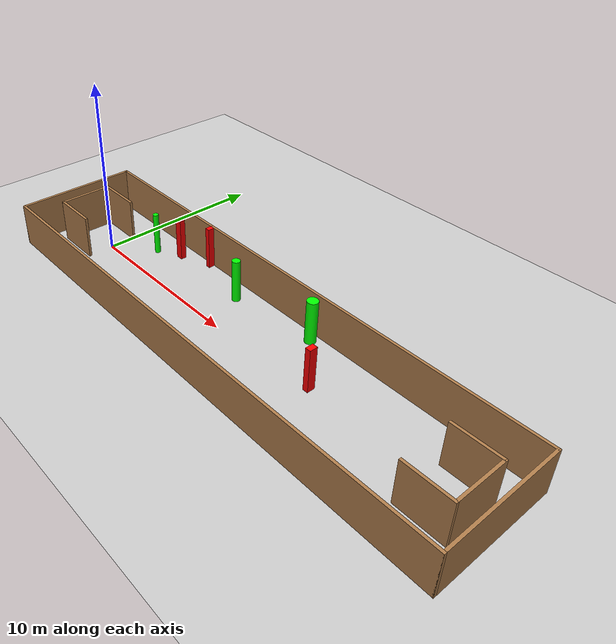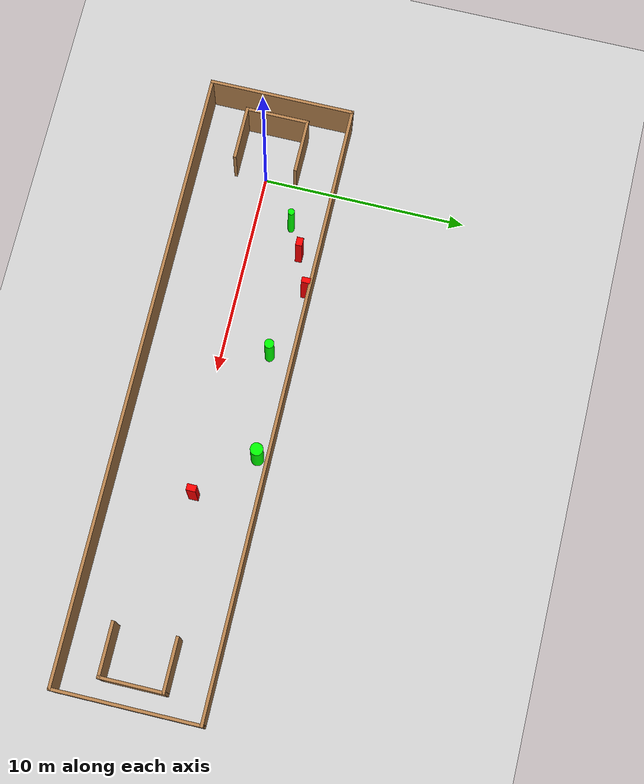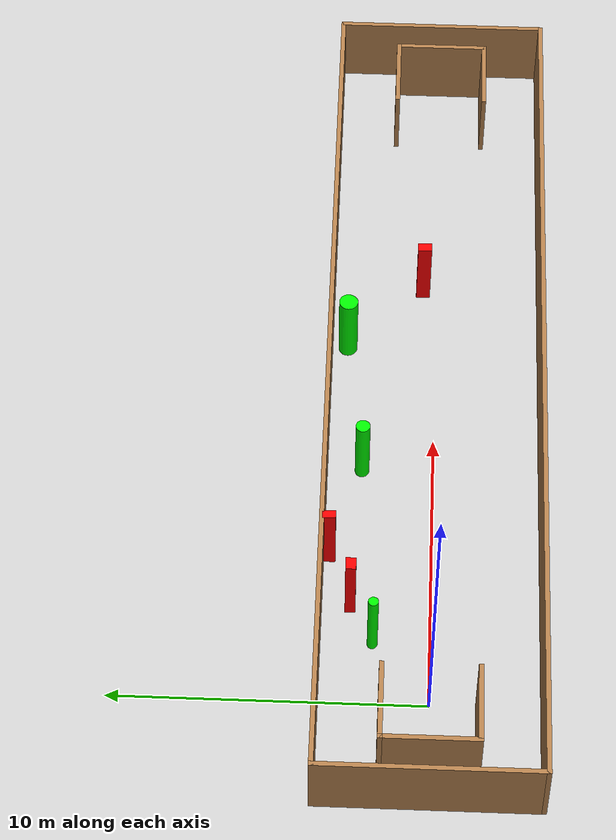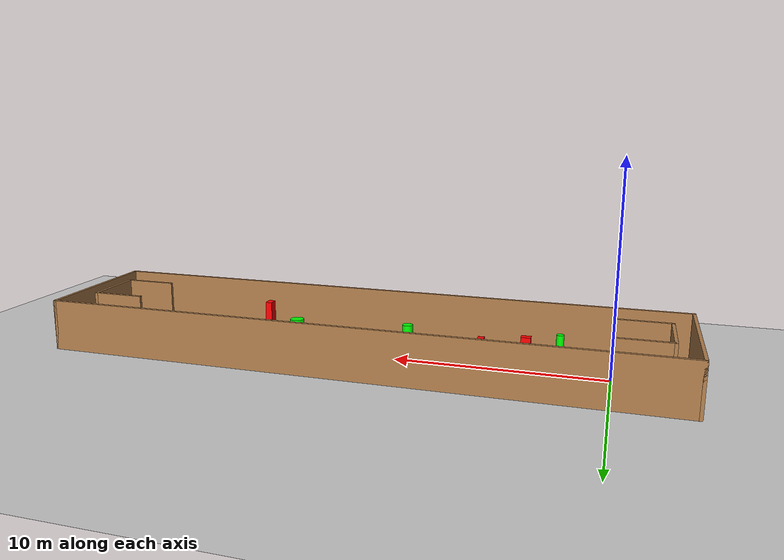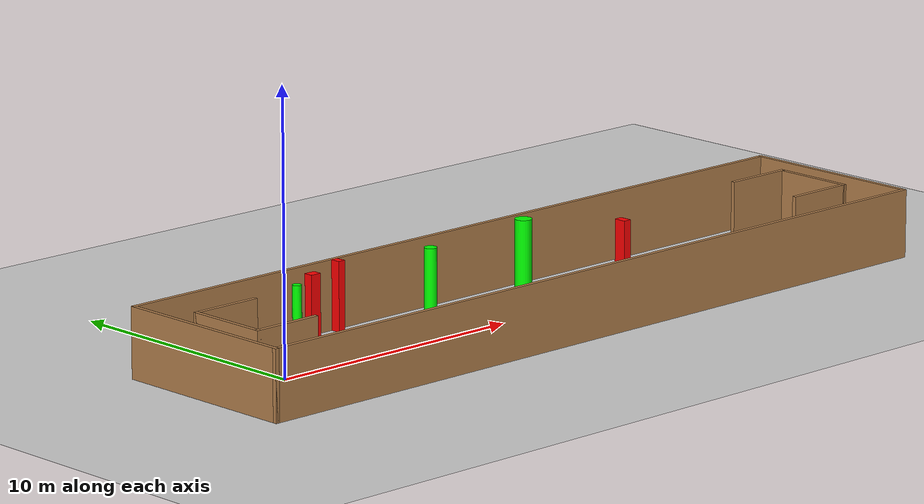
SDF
<sdf version="1.7">
 <world name="default">
  <light name="sun" type="directional">
   <pose>0 0 10 0 -0 0</pose>
   <diffuse>0.8 0.8 0.8 1</diffuse>
   <specular>0.2 0.2 0.2 1</specular>
   <attenuation>
    <range>1000</range>
    <constant>0.9</constant>
    <linear>0.01</linear>
    <quadratic>0.001</quadratic>
   </attenuation>
   <direction>-0.5 0.1 -0.9</direction>
   <spot><inner_angle>0</inner_angle><outer_angle>0</outer_angle><falloff>0</falloff></spot>
  </light>
  <model name="ground_plane">
   <static>1</static>
   <link name="link">
    <collision name="collision">
     <geometry><plane><normal>0 0 1</normal><size>100 100</size></plane></geometry>
     <surface>
      <contact><collide_bitmask>65535</collide_bitmask></contact>
      <friction><ode><mu>100</mu><mu2>50</mu2></ode></friction>
     </surface>
    </collision>
    <visual name="visual">
     <cast_shadows>0</cast_shadows>
     <geometry><plane><normal>0 0 1</normal><size>100 100</size></plane></geometry>
     <material>
      <script><uri>file://media/materials/scripts/gazebo.material</uri><name>Gazebo/Grey</name></script>
     </material>
    </visual>
   </link>
  </model>
  <gravity>0 0 -9.8</gravity>
  <magnetic_field>6e-06 2.3e-05 -4.2e-05</magnetic_field>
  <atmosphere type="adiabatic"/>
  <physics type="ode">
   <max_step_size>0.001</max_step_size>
   <real_time_factor>1</real_time_factor>
   <real_time_update_rate>1000</real_time_update_rate>
  </physics>
  <scene><ambient>0.4 0.4 0.4 1</ambient><background>0.7 0.7 0.7 1</background><shadows>1</shadows></scene>
  <spherical_coordinates>
   <surface_model>EARTH_WGS84</surface_model>
   <latitude_deg>0</latitude_deg>
   <longitude_deg>0</longitude_deg>
   <elevation>0</elevation>
   <heading_deg>0</heading_deg>
  </spherical_coordinates>
  <model name="my_base_walls">
   <link name="Wall_0">
    <collision name="Wall_0_Collision">
     <geometry><box><size>7.15 0.15 2.5</size></box></geometry>
     <pose>0 0 1.25 0 -0 0</pose>
    </collision>
    <visual name="Wall_0_Visual">
     <pose>0 0 1.25 0 -0 0</pose>
     <geometry><box><size>7.15 0.15 2.5</size></box></geometry>
     <material>
      <script><uri>file://media/materials/scripts/gazebo.material</uri><name>Gazebo/Wood</name></script>
      <ambient>1 1 1 1</ambient>
     </material>
     <meta><layer>0</layer></meta>
    </visual>
    <pose>-15 0 0 0 -0 1.5708</pose>
   </link>
   <link name="Wall_10">
    <collision name="Wall_10_Collision">
     <geometry><box><size>2.65 0.15 2.5</size></box></geometry>
     <pose>0 0 1.25 0 -0 0</pose>
    </collision>
    <visual name="Wall_10_Visual">
     <pose>0 0 1.25 0 -0 0</pose>
     <geometry><box><size>2.65 0.15 2.5</size></box></geometry>
     <material>
      <script><uri>file://media/materials/scripts/gazebo.material</uri><name>Gazebo/Wood</name></script>
      <ambient>1 1 1 1</ambient>
     </material>
     <meta><layer>0</layer></meta>
    </visual>
    <pose>-12.75 -1.5 0 0 -0 0</pose>
   </link>
   <link name="Wall_12">
    <collision name="Wall_12_Collision">
     <geometry><box><size>2.65 0.15 2.5</size></box></geometry>
     <pose>0 0 1.25 0 -0 0</pose>
    </collision>
    <visual name="Wall_12_Visual">
     <pose>0 0 1.25 0 -0 0</pose>
     <geometry><box><size>2.65 0.15 2.5</size></box></geometry>
     <material>
      <script><uri>file://media/materials/scripts/gazebo.material</uri><name>Gazebo/Wood</name></script>
      <ambient>1 1 1 1</ambient>
     </material>
     <meta><layer>0</layer></meta>
    </visual>
    <pose>-12.75 1.5 0 0 -0 0</pose>
   </link>
   <link name="Wall_14">
    <collision name="Wall_14_Collision">
     <geometry><box><size>3.15 0.15 2.5</size></box></geometry>
     <pose>0 0 1.25 0 -0 0</pose>
    </collision>
    <visual name="Wall_14_Visual">
     <pose>0 0 1.25 0 -0 0</pose>
     <geometry><box><size>3.15 0.15 2.5</size></box></geometry>
     <material>
      <script><uri>file://media/materials/scripts/gazebo.material</uri><name>Gazebo/Wood</name></script>
      <ambient>1 1 1 1</ambient>
     </material>
     <meta><layer>0</layer></meta>
    </visual>
    <pose>14 0 0 0 -0 -1.5708</pose>
   </link>
   <link name="Wall_15">
    <collision name="Wall_15_Collision">
     <geometry><box><size>2.65 0.15 2.5</size></box></geometry>
     <pose>0 0 1.25 0 -0 0</pose>
    </collision>
    <visual name="Wall_15_Visual">
     <pose>0 0 1.25 0 -0 0</pose>
     <geometry><box><size>2.65 0.15 2.5</size></box></geometry>
     <material>
      <script><uri>file://media/materials/scripts/gazebo.material</uri><name>Gazebo/Wood</name></script>
      <ambient>1 1 1 1</ambient>
     </material>
     <meta><layer>0</layer></meta>
    </visual>
    <pose>12.75 -1.5 0 0 -0 3.14159</pose>
   </link>
   <link name="Wall_17">
    <collision name="Wall_17_Collision">
     <geometry><box><size>2.65 0.15 2.5</size></box></geometry>
     <pose>0 0 1.25 0 -0 0</pose>
    </collision>
    <visual name="Wall_17_Visual">
     <pose>0 0 1.25 0 -0 0</pose>
     <geometry><box><size>2.65 0.15 2.5</size></box></geometry>
     <material>
      <script><uri>file://media/materials/scripts/gazebo.material</uri><name>Gazebo/Wood</name></script>
      <ambient>1 1 1 1</ambient>
     </material>
     <meta><layer>0</layer></meta>
    </visual>
    <pose>12.75 1.5 0 0 -0 3.14159</pose>
   </link>
   <link name="Wall_2">
    <collision name="Wall_2_Collision">
     <geometry><box><size>30.15 0.15 2.5</size></box></geometry>
     <pose>0 0 1.25 0 -0 0</pose>
    </collision>
    <visual name="Wall_2_Visual">
     <pose>0 0 1.25 0 -0 0</pose>
     <geometry><box><size>30.15 0.15 2.5</size></box></geometry>
     <material>
      <script><uri>file://media/materials/scripts/gazebo.material</uri><name>Gazebo/Wood</name></script>
      <ambient>1 1 1 1</ambient>
     </material>
     <meta><layer>0</layer></meta>
    </visual>
    <pose>-0 -3.5 0 0 -0 0</pose>
   </link>
   <link name="Wall_4">
    <collision name="Wall_4_Collision">
     <geometry><box><size>30.15 0.15 2.5</size></box></geometry>
     <pose>0 0 1.25 0 -0 0</pose>
    </collision>
    <visual name="Wall_4_Visual">
     <pose>0 0 1.25 0 -0 0</pose>
     <geometry><box><size>30.15 0.15 2.5</size></box></geometry>
     <material>
      <script><uri>file://media/materials/scripts/gazebo.material</uri><name>Gazebo/Wood</name></script>
      <ambient>1 1 1 1</ambient>
     </material>
     <meta><layer>0</layer></meta>
    </visual>
    <pose>-0 3.5 0 0 -0 0</pose>
   </link>
   <link name="Wall_6">
    <collision name="Wall_6_Collision">
     <geometry><box><size>7.15 0.15 2.5</size></box></geometry>
     <pose>0 0 1.25 0 -0 0</pose>
    </collision>
    <visual name="Wall_6_Visual">
     <pose>0 0 1.25 0 -0 0</pose>
     <geometry><box><size>7.15 0.15 2.5</size></box></geometry>
     <material>
      <script><uri>file://media/materials/scripts/gazebo.material</uri><name>Gazebo/Wood</name></script>
      <ambient>1 1 1 1</ambient>
     </material>
     <meta><layer>0</layer></meta>
    </visual>
    <pose>15 0 0 0 -0 -1.5708</pose>
   </link>
   <link name="Wall_9">
    <collision name="Wall_9_Collision">
     <geometry><box><size>3.15 0.15 2.5</size></box></geometry>
     <pose>0 0 1.25 0 -0 0</pose>
    </collision>
    <visual name="Wall_9_Visual">
     <pose>0 0 1.25 0 -0 0</pose>
     <geometry><box><size>3.15 0.15 2.5</size></box></geometry>
     <material>
      <script><uri>file://media/materials/scripts/gazebo.material</uri><name>Gazebo/Wood</name></script>
      <ambient>1 1 1 1</ambient>
     </material>
     <meta><layer>0</layer></meta>
    </visual>
    <pose>-14 0 0 0 -0 -1.5708</pose>
   </link>
   <static>1</static>
   <pose>11.5 0 0 0 -0 0</pose>
  </model>
  <model name="cylinder1">
   <static>1</static>
   <link name="link">
    <inertial>
     <mass>1</mass>
     <inertia><ixx>0.5</ixx><ixy>0</ixy><ixz>0</ixz><iyy>0.5</iyy><iyz>0</iyz><izz>1</izz></inertia>
    </inertial>
    <collision name="collision">
     <geometry><cylinder><radius>0.31038587932084427</radius><length>2.5</length></cylinder></geometry>
    </collision>
    <visual name="visual">
     <geometry><cylinder><radius>0.31038587932084427</radius><length>2.5</length></cylinder></geometry>
     <material>
      <ambient>0 1 0 1</ambient>
      <diffuse>0 1 0 1</diffuse>
      <specular>0.1 0.1 0.1 1</specular>
      <emissive>0 0 0 0</emissive>
     </material>
    </visual>
   </link>
   <pose>13.800727702760971 2.921914499978537 1.25 0 0 0</pose>
  </model>
  <model name="cylinder2">
   <static>1</static>
   <link name="link">
    <inertial>
     <mass>1</mass>
     <inertia><ixx>0.5</ixx><ixy>0</ixy><ixz>0</ixz><iyy>0.5</iyy><iyz>0</iyz><izz>1</izz></inertia>
    </inertial>
    <collision name="collision">
     <geometry><cylinder><radius>0.16255724346592418</radius><length>2.5</length></cylinder></geometry>
    </collision>
    <visual name="visual">
     <geometry><cylinder><radius>0.16255724346592418</radius><length>2.5</length></cylinder></geometry>
     <material>
      <ambient>0 1 0 1</ambient>
      <diffuse>0 1 0 1</diffuse>
      <specular>0.1 0.1 0.1 1</specular>
      <emissive>0 0 0 0</emissive>
     </material>
    </visual>
   </link>
   <pose>2.1658714197582523 1.8033727535226571 1.25 0 0 0</pose>
  </model>
  <model name="cylinder3">
   <static>1</static>
   <link name="link">
    <inertial>
     <mass>1</mass>
     <inertia><ixx>0.5</ixx><ixy>0</ixy><ixz>0</ixz><iyy>0.5</iyy><iyz>0</iyz><izz>1</izz></inertia>
    </inertial>
    <collision name="collision">
     <geometry><cylinder><radius>0.23070295687447195</radius><length>2.5</length></cylinder></geometry>
    </collision>
    <visual name="visual">
     <geometry><cylinder><radius>0.23070295687447195</radius><length>2.5</length></cylinder></geometry>
     <material>
      <ambient>0 1 0 1</ambient>
      <diffuse>0 1 0 1</diffuse>
      <specular>0.1 0.1 0.1 1</specular>
      <emissive>0 0 0 0</emissive>
     </material>
    </visual>
   </link>
   <pose>8.762237817752517 2.3061724316905403 1.25 0 0 0</pose>
  </model>
  <model name="box1">
   <static>1</static>
   <link name="link">
    <inertial>
     <mass>1</mass>
     <inertia><ixx>0.083</ixx><ixy>0</ixy><ixz>0</ixz><iyy>0.083</iyy><iyz>0</iyz><izz>0.083</izz></inertia>
    </inertial>
    <collision name="collision">
     <geometry><box><size>0.31170807208126206 0.4590158733060875 2.5</size></box></geometry>
    </collision>
    <visual name="visual">
     <geometry><box><size>0.31170807208126206 0.4590158733060875 2.5</size></box></geometry>
     <material>
      <ambient>1 0 0 1</ambient>
      <diffuse>1 0 0 1</diffuse>
      <specular>0.1 0.1 0.1 1</specular>
      <emissive>0 0 0 0</emissive>
     </material>
    </visual>
    <sensor name="my_contact" type="contact">
     <contact><collision>box_collision</collision><topic>__default_topic__</topic></contact>
    </sensor>
   </link>
   <pose>16.244702894504815 0.43938027015510484 1.25 0 0 0</pose>
  </model>
  <model name="box2">
   <static>1</static>
   <link name="link">
    <inertial>
     <mass>1</mass>
     <inertia><ixx>0.083</ixx><ixy>0</ixy><ixz>0</ixz><iyy>0.083</iyy><iyz>0</iyz><izz>0.083</izz></inertia>
    </inertial>
    <collision name="collision">
     <geometry><box><size>0.4163617320727628 0.32738037682476584 2.5</size></box></geometry>
    </collision>
    <visual name="visual">
     <geometry><box><size>0.4163617320727628 0.32738037682476584 2.5</size></box></geometry>
     <material>
      <ambient>1 0 0 1</ambient>
      <diffuse>1 0 0 1</diffuse>
      <specular>0.1 0.1 0.1 1</specular>
      <emissive>0 0 0 0</emissive>
     </material>
    </visual>
    <sensor name="my_contact" type="contact">
     <contact><collision>box_collision</collision><topic>__default_topic__</topic></contact>
    </sensor>
   </link>
   <pose>3.529241689010684 2.532581349757968 1.25 0 0 0</pose>
  </model>
  <model name="box3">
   <static>1</static>
   <link name="link">
    <inertial>
     <mass>1</mass>
     <inertia><ixx>0.083</ixx><ixy>0</ixy><ixz>0</ixz><iyy>0.083</iyy><iyz>0</iyz><izz>0.083</izz></inertia>
    </inertial>
    <collision name="collision">
     <geometry><box><size>0.2736886583353015 0.42733469430881493 2.5</size></box></geometry>
    </collision>
    <visual name="visual">
     <geometry><box><size>0.2736886583353015 0.42733469430881493 2.5</size></box></geometry>
     <material>
      <ambient>1 0 0 1</ambient>
      <diffuse>1 0 0 1</diffuse>
      <specular>0.1 0.1 0.1 1</specular>
      <emissive>0 0 0 0</emissive>
     </material>
    </visual>
    <sensor name="my_contact" type="contact">
     <contact><collision>box_collision</collision><topic>__default_topic__</topic></contact>
    </sensor>
   </link>
   <pose>5.332524667069745 3.2720802268454303 1.25 0 0 0</pose>
  </model>
 </world>
</sdf>
